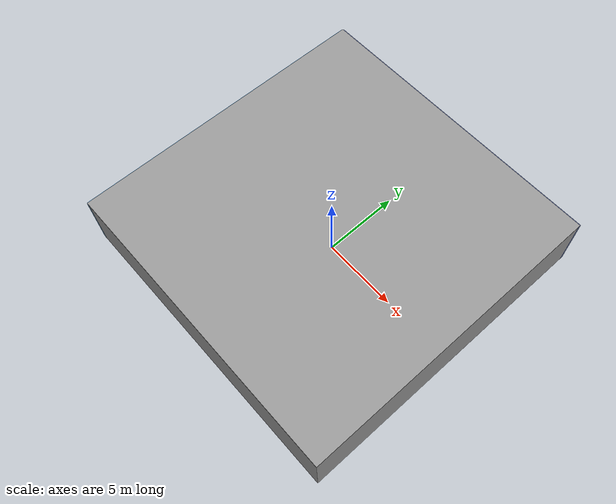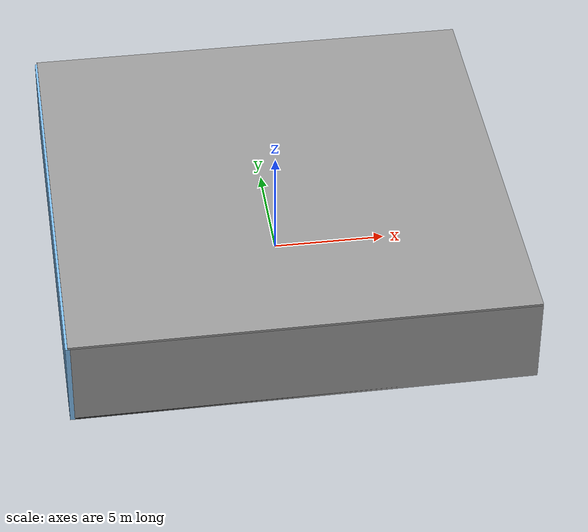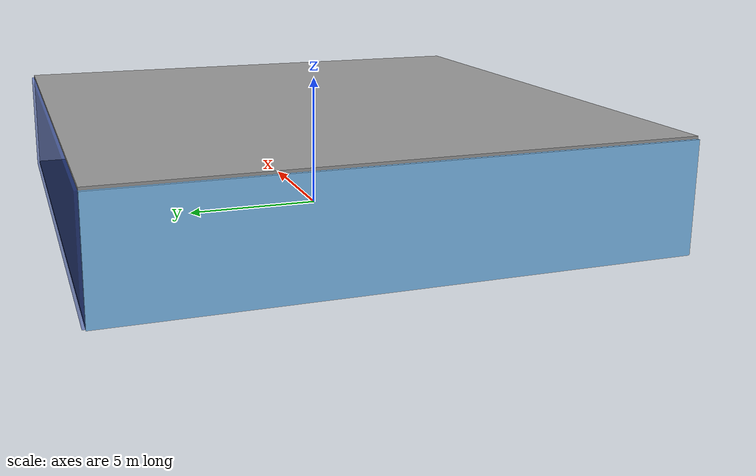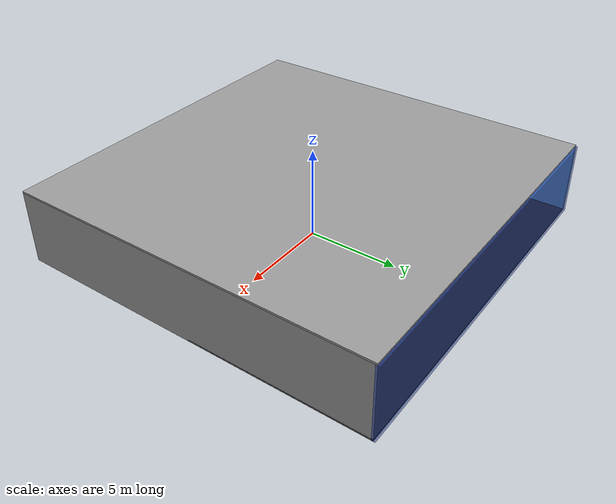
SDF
<sdf version="1.4">
 <world name="default">
  <physics type="ode">
   <max_step_size>0.001</max_step_size>
   <real_time_factor>1</real_time_factor>
   <real_time_update_rate>1000</real_time_update_rate>
   <gravity>0 0 -9.8</gravity>
  </physics>
  <scene><ambient>0.4 0.4 0.4 1</ambient><background>0.7 0.7 0.7 1</background><shadows>1</shadows></scene>
  <model name="Surrounding">
   <static>1</static>
   <link name="Ceiling">
    <collision name="Ceiling_Collision"><geometry><box><size>20 20 0.1</size></box></geometry></collision>
    <visual name="Ceiling_Visual">
     <geometry><box><size>20 20 0.1</size></box></geometry>
     <material>
      <script><uri>file://media/materials/scripts/gazebo.material</uri><name>Gazebo/GreyGradientSky</name></script>
     </material>
    </visual>
    <pose>0 0 4.05 0 0 0</pose>
   </link>
   <link name="Wall_South">
    <collision name="Wall_South_Collision">
     <geometry><box><size>20 0 4</size></box></geometry>
     <pose>0 0 2 0 -0 0</pose>
    </collision>
    <visual name="Wall_South_Visual">
     <pose>0 0 2 0 -0 0</pose>
     <geometry><box><size>20 0 4</size></box></geometry>
     <material>
      <script><uri>file://media/materials/scripts/gazebo.material</uri><name>Gazebo/GreyGradientSky</name></script>
     </material>
    </visual>
    <velocity_decay><linear>0</linear><angular>0</angular></velocity_decay>
    <pose>0 -10 0 0 -0 0</pose>
   </link>
   <link name="Wall_East">
    <collision name="Wall_21_Collision">
     <geometry><box><size>20 0 4</size></box></geometry>
     <pose>0 0 2 0 -0 0</pose>
    </collision>
    <visual name="Wall_21_Visual">
     <pose>0 0 2 0 -0 0</pose>
     <geometry><box><size>20 0 4</size></box></geometry>
     <material>
      <script><uri>file://media/materials/scripts/gazebo.material</uri><name>Gazebo/GreyGradientSky</name></script>
     </material>
    </visual>
    <velocity_decay><linear>0</linear><angular>0</angular></velocity_decay>
    <pose>10 0 0 0 -0 1.5708</pose>
   </link>
   <link name="Wall_North">
    <collision name="Wall_22_Collision">
     <geometry><box><size>20 0.2 4</size></box></geometry>
     <pose>0 0 2 0 -0 0</pose>
    </collision>
    <visual name="Wall_22_Visual">
     <pose>0 0 2 0 -0 0</pose>
     <geometry><box><size>20 0.2 4</size></box></geometry>
     <material>
      <script><uri>file://media/materials/scripts/gazebo.material</uri><name>Gazebo/BlueTransparent</name></script>
     </material>
    </visual>
    <velocity_decay><linear>0</linear><angular>0</angular></velocity_decay>
    <pose>0 10 0 0 -0 0</pose>
   </link>
   <link name="Wall_West">
    <collision name="Wall_23_Collision">
     <geometry><box><size>20 0.2 4</size></box></geometry>
     <pose>0 0 2 0 -0 0</pose>
    </collision>
    <visual name="Wall_23_Visual">
     <pose>0 0 2 0 -0 0</pose>
     <geometry><box><size>20 0.2 4</size></box></geometry>
     <material>
      <script><uri>file://media/materials/scripts/gazebo.material</uri><name>Gazebo/SkyBlue</name></script>
     </material>
    </visual>
    <velocity_decay><linear>0</linear><angular>0</angular></velocity_decay>
    <pose>-10 0 0 0 0 -1.5708</pose>
   </link>
   <link name="Ground_link">
    <collision name="collision">
     <pose>0 0 .05 0 -0 0</pose>
     <geometry><box><size>20 20 0.1</size></box></geometry>
    </collision>
    <visual name="visual">
     <pose>0 0 .05 0 -0 0</pose>
     <geometry><box><size>20 20 0.1</size></box></geometry>
     <material>
      <script><uri>file://media/materials/scripts/gazebo.material</uri><name>Gazebo/FlatBlack</name></script>
     </material>
    </visual>
   </link>
   <static>1</static>
  </model>
  <spherical_coordinates>
   <surface_model>EARTH_WGS84</surface_model>
   <latitude_deg>0</latitude_deg>
   <longitude_deg>0</longitude_deg>
   <elevation>0</elevation>
   <heading_deg>0</heading_deg>
  </spherical_coordinates>
  <light name="lightball_0" type="diffuse">
   <diffuse>0.8 0.8 0.8 1</diffuse>
   <specular>0.2 0.2 0.2 1</specular>
   <attenuation>
    <range>100</range>
    <constant>0.7</constant>
    <linear>0.01</linear>
    <quadratic>0.001</quadratic>
   </attenuation>
   <direction>-0.5 0.1 -0.9</direction>
   <pose>-2.69300429322 -7.72903219518 2.88572057342 0 0 0</pose>
  </light>
  <light name="lightball_1" type="diffuse">
   <diffuse>0.8 0.8 0.8 1</diffuse>
   <specular>0.2 0.2 0.2 1</specular>
   <attenuation>
    <range>100</range>
    <constant>0.7</constant>
    <linear>0.01</linear>
    <quadratic>0.001</quadratic>
   </attenuation>
   <direction>-0.5 0.1 -0.9</direction>
   <pose>2.80947677424 5.71819804561 2.23901156496 0 0 0</pose>
  </light>
  <light name="lightball_2" type="diffuse">
   <diffuse>0.8 0.8 0.8 1</diffuse>
   <specular>0.2 0.2 0.2 1</specular>
   <attenuation>
    <range>100</range>
    <constant>0.7</constant>
    <linear>0.01</linear>
    <quadratic>0.001</quadratic>
   </attenuation>
   <direction>-0.5 0.1 -0.9</direction>
   <pose>-4.76407465542 -1.74105812251 2.60004387136 0 0 0</pose>
  </light>
  <include><uri>model://cabinet</uri><pose>-7.78948521504 1.56177473237 0 0 0 0.274273777802</pose></include>
  <include>
   <uri>model://robocup_3Dsim_goal</uri>
   <pose>-8.18507805425 4.05012765353 0 0 0 1.19789411083</pose>
  </include>
  <include><uri>model://cabinet</uri><pose>-1.5078779679 -4.90510543856 0 0 0 0.445392854032</pose></include>
  <include><uri>model://cabinet</uri><pose>-2.22105983343 4.2921231323 0 0 0 2.5522162485</pose></include>
  <include>
   <uri>model://construction_cone</uri>
   <pose>2.19992867283 -6.85215679381 0 0 0 1.67715101348</pose>
  </include>
  <include><uri>model://cabinet</uri><pose>1.56594689212 4.72114310171 0 0 0 2.80108356546</pose></include>
  <include>
   <uri>model://robocup_3Dsim_goal</uri>
   <pose>4.18055679109 -8.12023341427 0 0 0 0.937079925088</pose>
  </include>
  <include>
   <uri>model://construction_cone</uri>
   <pose>4.07203869933 1.3387263261 0 0 0 1.5146813658</pose>
  </include>
  <include><uri>model://cabinet</uri><pose>8.0382152916 1.94325250644 0 0 0 0.386857691092</pose></include>
 </world>
</sdf>

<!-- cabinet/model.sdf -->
<sdf version="1.5">
  <model name="cabinet">
    <static>true</static>
    <link name="cabinet_bottom_plate">
      <inertial>
        <pose>0 0 -1 0 0 0</pose>
        <inertia>
          <ixx>2.050000</ixx>
          <ixy>0</ixy>
          <ixz>0</ixz>
          <iyy>2.050000</iyy>
          <iyz>0</iyz>
          <izz>2.050000</izz>
        </inertia>
        <mass>25.000000</mass>
      </inertial>
      <collision name="cabinet_bottom_plate_geom">
        <pose>0 0 0.010000 0 0 0</pose>
        <geometry>
          <box>
            <size>0.450000 0.450000 0.020000</size>
          </box>
        </geometry>
      </collision>
      <visual name="cabinet_bottom_plate_geom_visual">
        <pose>0 0 0.010000 0 0 0</pose>
        <geometry>
          <box>
            <size>0.450000 0.450000 0.020000</size>
          </box>
        </geometry>
        <material>
          <script>
            <uri>model://media/materials/scripts/gazebo.material</uri>
            <name>Gazebo/Wood</name>
          </script>
        </material>
      </visual>
      <collision name="cabinet_bottom_plate_geom_cabinet_back_plate">
        <pose>0.235000 0 0.510000 0 0 0</pose>
        <geometry>
          <box>
            <size>0.020000 0.450000 1.020000</size>
          </box>
        </geometry>
      </collision>
      <visual name="cabinet_bottom_plate_geom_cabinet_back_plate_visual">
        <pose>0.235000 0 0.510000 0 0 0</pose>
        <geometry>
          <box>
            <size>0.020000 0.450000 1.020000</size>
          </box>
        </geometry>
        <material>
          <script>
            <uri>model://media/materials/scripts/gazebo.material</uri>
            <name>Gazebo/Wood</name>
          </script>
        </material>
      </visual>
      <collision name="cabinet_bottom_plate_geom_cabinet_left_plate">
        <pose>0 0.235000 0.510000 0 0 0</pose>
        <geometry>
          <box>
            <size>0.450000 0.020000 1.020000</size>
          </box>
        </geometry>
      </collision>
      <visual name="cabinet_bottom_plate_geom_cabinet_left_plate_visual">
        <pose>0 0.235000 0.510000 0 0 0</pose>
        <geometry>
          <box>
            <size>0.450000 0.020000 1.020000</size>
          </box>
        </geometry>
        <material>
          <script>
            <uri>model://media/materials/scripts/gazebo.material</uri>
            <name>Gazebo/Wood</name>
          </script>
        </material>
      </visual>
      <collision name="cabinet_bottom_plate_geom_cabinet_middle_plate">
        <pose>0 0 0.510000 0 0 0</pose>
        <geometry>
          <box>
            <size>0.450000 0.450000 0.020000</size>
          </box>
        </geometry>
      </collision>
      <visual name="cabinet_bottom_plate_geom_cabinet_middle_plate_visual">
        <pose>0 0 0.510000 0 0 0</pose>
        <geometry>
          <box>
            <size>0.450000 0.450000 0.020000</size>
          </box>
        </geometry>
        <material>
          <script>
            <uri>model://media/materials/scripts/gazebo.material</uri>
            <name>Gazebo/Wood</name>
          </script>
        </material>
      </visual>
      <collision name="cabinet_bottom_plate_geom_cabinet_right_plate">
        <pose>0 -0.235000 0.510000 0 0 0</pose>
        <geometry>
          <box>
            <size>0.450000 0.020000 1.020000</size>
          </box>
        </geometry>
      </collision>
      <visual name="cabinet_bottom_plate_geom_cabinet_right_plate_visual">
        <pose>0 -0.235000 0.510000 0 0 0</pose>
        <geometry>
          <box>
            <size>0.450000 0.020000 1.020000</size>
          </box>
        </geometry>
        <material>
          <script>
            <uri>model://media/materials/scripts/gazebo.material</uri>
            <name>Gazebo/Wood</name>
          </script>
        </material>
      </visual>
      <collision name="cabinet_bottom_plate_geom_cabinet_top_plate">
        <pose>0 0 1.010000 0 0 0</pose>
        <geometry>
          <box>
            <size>0.450000 0.450000 0.020000</size>
          </box>
        </geometry>
      </collision>
      <visual name="cabinet_bottom_plate_geom_cabinet_top_plate_visual">
        <pose>0 0 1.010000 0 0 0</pose>
        <geometry>
          <box>
            <size>0.450000 0.450000 0.020000</size>
          </box>
        </geometry>
        <material>
          <script>
            <uri>model://media/materials/scripts/gazebo.material</uri>
            <name>Gazebo/Wood</name>
          </script>
        </material>
      </visual>
    </link>
  </model>
</sdf>

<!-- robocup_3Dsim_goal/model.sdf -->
<sdf version="1.5">
  <model name="robocup_3d_goal">
    <static>true</static>
    <link name="left_post">
      <pose>0 1.05 0.45 0 0 0</pose>
      <collision name="collision">
        <geometry>
          <cylinder>
            <radius>0.05</radius>
            <length>0.9</length>
          </cylinder>
        </geometry>
      </collision>
      <visual name="visual">
        <geometry>
          <cylinder>
            <radius>0.05</radius>
            <length>0.9</length>
          </cylinder>
        </geometry>
        <material>
          <script>
            <uri>file://media/materials/scripts/gazebo.material</uri>
            <name>Gazebo/ZincYellow</name>
          </script>
        </material>
      </visual>
    </link>
    <link name="left_support_horiz_lower">
      <pose>0.30 1.05 0.01 0 0 0</pose>
      <collision name="collision">
        <geometry>
          <box>
            <size>0.50 0.02 0.02</size>
          </box>
        </geometry>
      </collision>
      <visual name="visual">
        <geometry>
          <box>
            <size>0.50 0.02 0.02</size>
          </box>
        </geometry>
        <material>
          <script>
            <uri>file://media/materials/scripts/gazebo.material</uri>
            <name>Gazebo/White</name>
          </script>
        </material>
      </visual>
    </link>
    <link name="left_support_horiz_upper">
      <pose>0.30 1.05 0.79 0 0 0</pose>
      <collision name="collision">
        <geometry>
          <box>
            <size>0.50 0.02 0.02</size>
          </box>
        </geometry>
      </collision>
      <visual name="visual">
        <geometry>
          <box>
            <size>0.50 0.02 0.02</size>
          </box>
        </geometry>
        <material>
          <script>
            <uri>file://media/materials/scripts/gazebo.material</uri>
            <name>Gazebo/White</name>
          </script>
        </material>
      </visual>
    </link>
    <link name="left_support_vertical">
      <pose>0.56 1.05 0.4 0 1.5708 0</pose>
      <collision name="collision">
        <geometry>
          <box>
            <size>0.80 0.02 0.02</size>
          </box>
        </geometry>
      </collision>
      <visual name="visual">
        <geometry>
          <box>
            <size>0.80 0.02 0.02</size>
          </box>
        </geometry>
        <material>
          <script>
            <uri>file://media/materials/scripts/gazebo.material</uri>
            <name>Gazebo/White</name>
          </script>
        </material>
      </visual>
    </link>
    <link name="right_support_horiz_lower">
      <pose>0.30 -1.05 0.01 0 0 0</pose>
      <collision name="collision">
        <geometry>
          <box>
            <size>0.50 0.02 0.02</size>
          </box>
        </geometry>
      </collision>
      <visual name="visual">
        <geometry>
          <box>
            <size>0.50 0.02 0.02</size>
          </box>
        </geometry>
        <material>
          <script>
            <uri>file://media/materials/scripts/gazebo.material</uri>
            <name>Gazebo/White</name>
          </script>
        </material>
      </visual>
    </link>
    <link name="right_support_horiz_upper">
      <pose>0.30 -1.05 0.79 0 0 0</pose>
      <collision name="collision">
        <geometry>
          <box>
            <size>0.50 0.02 0.02</size>
          </box>
        </geometry>
      </collision>
      <visual name="visual">
        <geometry>
          <box>
            <size>0.50 0.02 0.02</size>
          </box>
        </geometry>
        <material>
          <script>
            <uri>file://media/materials/scripts/gazebo.material</uri>
            <name>Gazebo/White</name>
          </script>
        </material>
      </visual>
    </link>
    <link name="right_support_vertical">
      <pose>0.56 -1.05 0.4 0 1.5708 0</pose>
      <collision name="collision">
        <geometry>
          <box>
            <size>0.80 0.02 0.02</size>
          </box>
        </geometry>
      </collision>
      <visual name="visual">
        <geometry>
          <box>
            <size>0.80 0.02 0.02</size>
          </box>
        </geometry>
        <material>
          <script>
            <uri>file://media/materials/scripts/gazebo.material</uri>
            <name>Gazebo/White</name>
          </script>
        </material>
      </visual>
    </link>
    <link name="center_support_horiz_lower">
      <pose>0.56 0 0.01 0 1.5708 0</pose>
      <collision name="collision">
        <geometry>
          <box>
            <size>0.02 2.08 0.02</size>
          </box>
        </geometry>
      </collision>
      <visual name="visual">
        <geometry>
          <box>
            <size>0.02 2.08 0.02</size>
          </box>
        </geometry>
        <material>
          <script>
            <uri>file://media/materials/scripts/gazebo.material</uri>
            <name>Gazebo/White</name>
          </script>
        </material>
      </visual>
    </link>
    <link name="center_support_horiz_upper">
      <pose>0.56 0 0.79 0 1.5708 0</pose>
      <collision name="collision">
        <geometry>
          <box>
            <size>0.02 2.08 0.02</size>
          </box>
        </geometry>
      </collision>
      <visual name="visual">
        <geometry>
          <box>
            <size>0.02 2.08 0.02</size>
          </box>
        </geometry>
        <material>
          <script>
            <uri>file://media/materials/scripts/gazebo.material</uri>
            <name>Gazebo/White</name>
          </script>
        </material>
      </visual>
    </link>
    <link name="right_post">
      <pose>0 -1.05 0.45 0 0 0</pose>
      <collision name="collision">
        <geometry>
          <cylinder>
            <radius>0.05</radius>
            <length>0.9</length>
          </cylinder>
        </geometry>
      </collision>
      <visual name="visual">
        <geometry>
          <cylinder>
            <radius>0.05</radius>
            <length>0.9</length>
          </cylinder>
        </geometry>
        <material>
          <script>
            <uri>file://media/materials/scripts/gazebo.material</uri>
            <name>Gazebo/ZincYellow</name>
          </script>
        </material>
      </visual>
    </link>
    <link name="crossbar">
      <pose>0 0 0.85 1.57 1.57 0</pose>
      <collision name="collision">
        <geometry>
          <cylinder>
            <radius>0.05</radius>
            <length>2.0</length>
          </cylinder>
        </geometry>
      </collision>
      <visual name="visual">
        <geometry>
          <cylinder>
            <radius>0.05</radius>
            <length>2.0</length>
          </cylinder>
        </geometry>
        <material>
          <script>
            <uri>file://media/materials/scripts/gazebo.material</uri>
            <name>Gazebo/ZincYellow</name>
          </script>
        </material>
      </visual>
    </link>
    <link name="center_net">
      <pose>0.56 0 0.40 0 0 0</pose>
      <collision name="collision">
        <geometry>
          <box>
            <size>0.01 2.1 0.80</size>
          </box>
        </geometry>
      </collision>
      <visual name="visual">
        <geometry>
          <box>
            <size>0.01 2.1 0.80</size>
          </box>
        </geometry>
        <material>
          <script>
            <uri>model://../model_source/models/robocup09_spl_field/materials/scripts/</uri>
            <uri>model://../model_source/models/robocup09_spl_field/materials/textures/</uri>
            <name>RoboCup/Net</name>
          </script>
        </material>
      </visual>
    </link>
    <link name="left_net">
      <pose>0.30 1.05 0.40 0 0 0</pose>
      <collision name="collision">
        <geometry>
          <box>
            <size>0.50 0.01 0.76</size>
          </box>
        </geometry>
      </collision>
      <visual name="visual">
        <geometry>
          <box>
            <size>0.50 0.01 0.76</size>
          </box>
        </geometry>
        <material>
          <script>
            <uri>model://../model_source/models/robocup09_spl_field/materials/scripts/</uri>
            <uri>model://../model_source/models/robocup09_spl_field/materials/textures/</uri>
            <name>RoboCup/Net</name>
          </script>
        </material>
      </visual>
    </link>
    <link name="right_net">
      <pose>0.30 -1.05 0.40 0 0 0</pose>
      <collision name="collision">
        <geometry>
          <box>
            <size>0.50 0.01 0.76</size>
          </box>
        </geometry>
      </collision>
      <visual name="visual">
        <geometry>
          <box>
            <size>0.50 0.01 0.76</size>
          </box>
        </geometry>
        <material>
          <script>
            <uri>model://../model_source/models/robocup09_spl_field/materials/scripts/</uri>
            <uri>model://../model_source/models/robocup09_spl_field/materials/textures/</uri>
            <name>RoboCup/Net</name>
          </script>
        </material>
      </visual>
    </link>
  </model>
</sdf>

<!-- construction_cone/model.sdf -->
<sdf version="1.5">
  <model name="Construction Cone">
    <link name="link">
      <collision name="collision">
        <geometry>
          <mesh>
            <scale>10 10 10</scale>
            <uri>file://isr-testbed/construction_cone/meshes/construction_cone.dae</uri>
          </mesh>
        </geometry>
      </collision>
      <visual name="visual">
        <geometry>
          <mesh>
            <scale>10 10 10</scale>
            <uri>file://isr-testbed/construction_cone/meshes/construction_cone.dae</uri>
          </mesh>
        </geometry>
      </visual>
    </link>
  </model>
</sdf>
